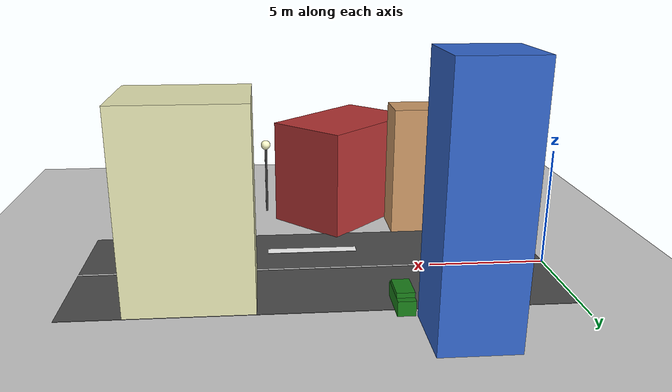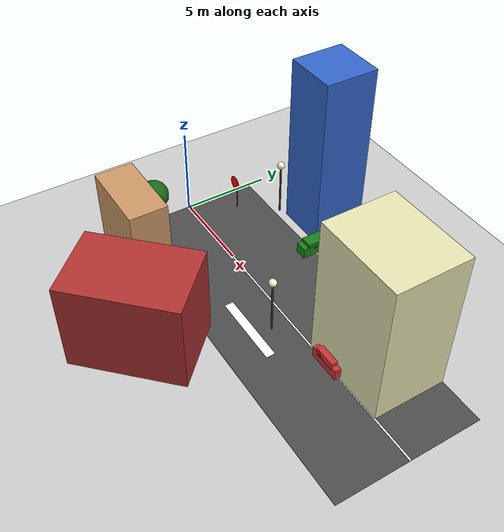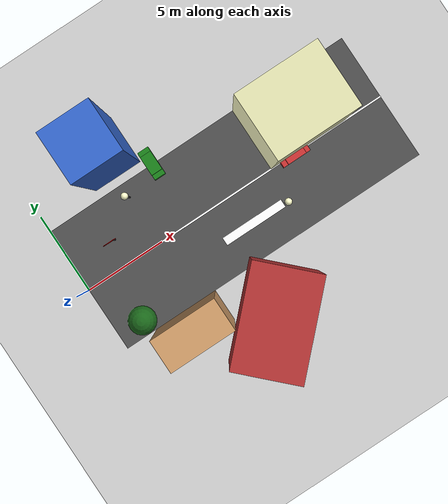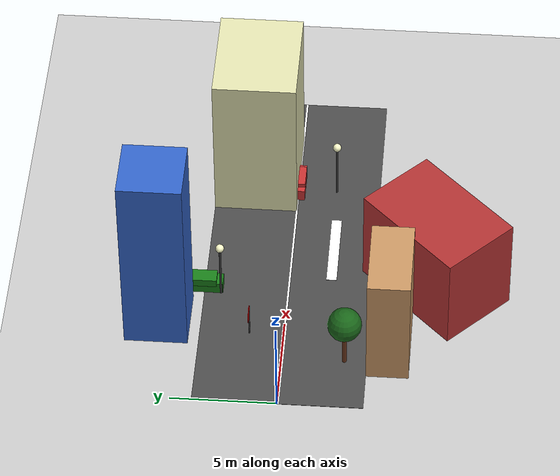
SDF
<?xml version='1.0' encoding='utf-8'?>
<sdf version="1.6">
  <world name="urban_city_test_world">

    <include>
      <uri>model://sun</uri>
    </include>

    <include>
      <uri>model://ground_plane</uri>
    </include>

    <physics type="ode">
      <max_step_size>0.001</max_step_size>
      <real_time_factor>1</real_time_factor>
      <real_time_update_rate>1000</real_time_update_rate>
    </physics>

    <model name="main_road">
      <pose>10 0 0.01 0 0 0</pose>
      <static>true</static>
      <link name="link">
        <visual name="visual">
          <geometry>
            <box><size>20 8 0.02</size></box>
          </geometry>
          <material>
            <ambient>0.3 0.3 0.3 1</ambient>
            <diffuse>0.3 0.3 0.3 1</diffuse>
          </material>
        </visual>
      </link>
    </model>

    <model name="road_marking_center">
      <pose>10 0 0.02 0 0 0</pose>
      <static>true</static>
      <link name="link">
        <visual name="visual">
          <geometry>
            <box><size>20 0.1 0.03</size></box>
          </geometry>
          <material>
            <ambient>1 1 1 1</ambient>
            <diffuse>1 1 1 1</diffuse>
          </material>
        </visual>
      </link>
    </model>

    <model name="skyscraper_right">
      <pose>5 6 5 0 0 0</pose>
      <static>true</static>
      <link name="link">
        <visual name="visual">
          <geometry>
            <box><size>3 3 10</size></box>
          </geometry>
          <material>
            <ambient>0.2 0.4 0.8 1</ambient>
            <diffuse>0.2 0.4 0.8 1</diffuse>
          </material>
        </visual>

        <visual name="windows">
          <pose>0 0 0 0 0 0</pose>
          <geometry>
            <box><size>2.8 2.8 9.8</size></box>
          </geometry>
          <material>
            <ambient>0.8 0.9 1 0.3</ambient>
            <diffuse>0.8 0.9 1 0.3</diffuse>
          </material>
        </visual>
      </link>
    </model>

    <model name="apartment_building_left">
      <pose>4 -5 3 0 0 0</pose>
      <static>true</static>
      <link name="link">
        <visual name="visual">
          <geometry>
            <box><size>4 2 6</size></box>
          </geometry>
          <material>
            <ambient>0.8 0.6 0.4 1</ambient>
            <diffuse>0.8 0.6 0.4 1</diffuse>
          </material>
        </visual>
      </link>
    </model>

    <model name="office_building_far">
      <pose>15 2 4 0 0 0</pose>
      <static>true</static>
      <link name="link">
        <visual name="visual">
          <geometry>
            <box><size>5 4 8</size></box>
          </geometry>
          <material>
            <ambient>0.9 0.9 0.7 1</ambient>
            <diffuse>0.9 0.9 0.7 1</diffuse>
          </material>
        </visual>
      </link>
    </model>

    <model name="shopping_mall">
      <pose>8 -7 2.5 0 0 0.785</pose>
      <static>true</static>
      <link name="link">
        <visual name="visual">
          <geometry>
            <box><size>6 4 5</size></box>
          </geometry>
          <material>
            <ambient>0.7 0.2 0.2 1</ambient>
            <diffuse>0.7 0.2 0.2 1</diffuse>
          </material>
        </visual>
      </link>
    </model>

    <model name="street_light_1">
      <pose>5 3 2 0 0 0</pose>
      <static>true</static>
      <link name="link">

        <visual name="pole">
          <pose>0 0 1.5 0 0 0</pose>
          <geometry>
            <cylinder>
              <radius>0.05</radius>
              <length>3</length>
            </cylinder>
          </geometry>
          <material>
            <ambient>0.2 0.2 0.2 1</ambient>
            <diffuse>0.2 0.2 0.2 1</diffuse>
          </material>
        </visual>

        <visual name="lamp">
          <pose>0 0 3 0 0 0</pose>
          <geometry>
            <sphere><radius>0.2</radius></sphere>
          </geometry>
          <material>
            <ambient>1 1 0.8 1</ambient>
            <diffuse>1 1 0.8 1</diffuse>
          </material>
        </visual>
      </link>
    </model>

    <model name="street_light_2">
      <pose>12 -2 2 0 0 0</pose>
      <static>true</static>
      <link name="link">
        <visual name="pole">
          <pose>0 0 1.5 0 0 0</pose>
          <geometry>
            <cylinder>
              <radius>0.05</radius>
              <length>3</length>
            </cylinder>
          </geometry>
          <material>
            <ambient>0.2 0.2 0.2 1</ambient>
            <diffuse>0.2 0.2 0.2 1</diffuse>
          </material>
        </visual>
        <visual name="lamp">
          <pose>0 0 3 0 0 0</pose>
          <geometry>
            <sphere><radius>0.2</radius></sphere>
          </geometry>
          <material>
            <ambient>1 1 0.8 1</ambient>
            <diffuse>1 1 0.8 1</diffuse>
          </material>
        </visual>
      </link>
    </model>

    <model name="stop_sign">
      <pose>3 1.5 1.5 0 0 1.57</pose>
      <static>true</static>
      <link name="link">

        <visual name="pole">
          <pose>0 0 0.75 0 0 0</pose>
          <geometry>
            <cylinder>
              <radius>0.03</radius>
              <length>1.5</length>
            </cylinder>
          </geometry>
          <material>
            <ambient>0.3 0.3 0.3 1</ambient>
            <diffuse>0.3 0.3 0.3 1</diffuse>
          </material>
        </visual>

        <visual name="sign">
          <pose>0 0.2 1.5 0 1.57 0</pose>
          <geometry>
            <cylinder>
              <radius>0.4</radius>
              <length>0.02</length>
            </cylinder>
          </geometry>
          <material>
            <ambient>1 0 0 1</ambient>
            <diffuse>1 0 0 1</diffuse>
          </material>
        </visual>
      </link>
    </model>

    <model name="parked_car">
      <pose>7 4 0.5 0 0 1.57</pose>
      <static>true</static>
      <link name="link">
        <visual name="body">
          <geometry>
            <box><size>1.8 0.7 0.6</size></box>
          </geometry>
          <material>
            <ambient>0.1 0.5 0.1 1</ambient>
            <diffuse>0.1 0.5 0.1 1</diffuse>
          </material>
        </visual>
        <visual name="top">
          <pose>0 0 0.3 0 0 0</pose>
          <geometry>
            <box><size>1.2 0.7 0.4</size></box>
          </geometry>
          <material>
            <ambient>0.1 0.5 0.1 1</ambient>
            <diffuse>0.1 0.5 0.1 1</diffuse>
          </material>
        </visual>
      </link>
    </model>

    <model name="moving_car">
      <pose>14 0 0.5 0 0 0</pose>
      <static>true</static>
      <link name="link">
        <visual name="body">
          <geometry>
            <box><size>1.8 0.7 0.6</size></box>
          </geometry>
          <material>
            <ambient>0.8 0.2 0.2 1</ambient>
            <diffuse>0.8 0.2 0.2 1</diffuse>
          </material>
        </visual>
        <visual name="top">
          <pose>0 0 0.3 0 0 0</pose>
          <geometry>
            <box><size>1.2 0.7 0.4</size></box>
          </geometry>
          <material>
            <ambient>0.8 0.2 0.2 1</ambient>
            <diffuse>0.8 0.2 0.2 1</diffuse>
          </material>
        </visual>
      </link>
    </model>

    <model name="crosswalk">
      <pose>10 -2 0.02 0 0 0</pose>
      <static>true</static>
      <link name="link">
        <visual name="visual">
          <geometry>
            <box><size>4 0.5 0.03</size></box>
          </geometry>
          <material>
            <ambient>1 1 1 1</ambient>
            <diffuse>1 1 1 1</diffuse>
          </material>
        </visual>
      </link>
    </model>

    <model name="tree_1">
      <pose>2 -3 1 0 0 0</pose>
      <static>true</static>
      <link name="link">

        <visual name="trunk">
          <pose>0 0 1 0 0 0</pose>
          <geometry>
            <cylinder>
              <radius>0.1</radius>
              <length>2</length>
            </cylinder>
          </geometry>
          <material>
            <ambient>0.4 0.2 0.1 1</ambient>
            <diffuse>0.4 0.2 0.1 1</diffuse>
          </material>
        </visual>

        <visual name="crown">
          <pose>0 0 2.5 0 0 0</pose>
          <geometry>
            <sphere><radius>0.8</radius></sphere>
          </geometry>
          <material>
            <ambient>0.1 0.4 0.1 1</ambient>
            <diffuse>0.1 0.4 0.1 1</diffuse>
          </material>
        </visual>
      </link>
    </model>

    <model name="tree_2">
      <pose>6 -8 1 0 0 0</pose>
      <static>true</static>
      <link name="link">
        <visual name="trunk">
          <pose>0 0 1 0 0 0</pose>
          <geometry>
            <cylinder>
              <radius>0.1</radius>
              <length>2</length>
            </cylinder>
          </geometry>
          <material>
            <ambient>0.4 0.2 0.1 1</ambient>
            <diffuse>0.4 0.2 0.1 1</diffuse>
          </material>
        </visual>
        <visual name="crown">
          <pose>0 0 2.5 0 0 0</pose>
          <geometry>
            <sphere><radius>0.8</radius></sphere>
          </geometry>
          <material>
            <ambient>0.1 0.4 0.1 1</ambient>
            <diffuse>0.1 0.4 0.1 1</diffuse>
          </material>
        </visual>
      </link>
    </model>

  <model name="depth_camera_1">
    <pose>0 0 0.5 0 0 0</pose>
    <static>true</static>
    <link name="camera_link">
      <collision name="collision">
        <geometry><box><size>0.05 0.05 0.05</size></box></geometry>
      </collision>
      <visual name="visual">
        <geometry><box><size>0.05 0.05 0.05</size></box></geometry>
      </visual>
      <sensor name="depth_cam_sensor" type="depth">
        <camera name="depth_camera">
          <horizontal_fov>1.3962634</horizontal_fov>
          <image>
            <width>1280</width>
            <height>960</height>
            <format>R8G8B8</format>
          </image>
          <clip>
            <near>0.05</near>
            <far>10.0</far>
          </clip>
          <noise>
            <type>gaussian</type>
            <mean>0.0</mean>
            <stddev>0.005</stddev>
          </noise>
        </camera>
        <plugin name="depth_camera_plugin" filename="libgazebo_ros_depth_camera.so">
          <cameraName>sensor</cameraName>
          <ros>
            <namespace>/sensor</namespace>
            <argument>image_raw:=image_raw</argument>
            <argument>depth/image_raw:=depth/image_raw</argument>
            <argument>points:=points</argument>
          </ros>
          <frame_name>camera_depth_optical_frame</frame_name>
          <optical_frame_id>camera_depth_optical_frame</optical_frame_id>
          <update_rate>30</update_rate>
        </plugin>
      </sensor>
    </link>
  </model>
</world>
</sdf>
